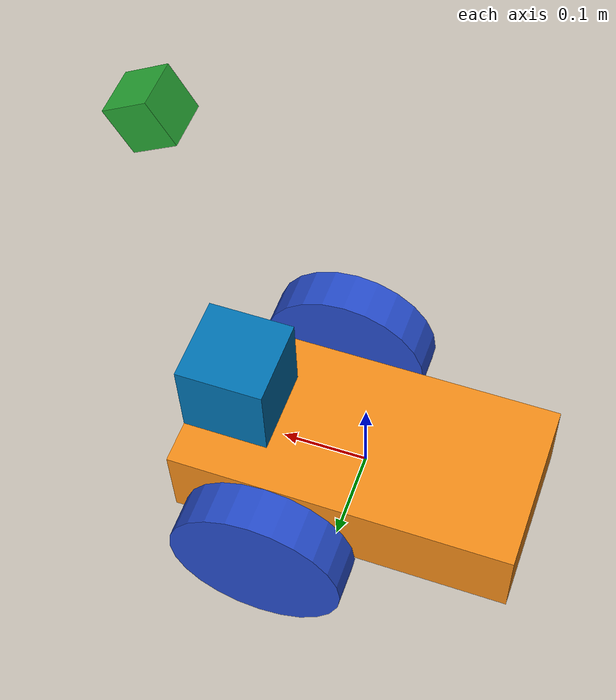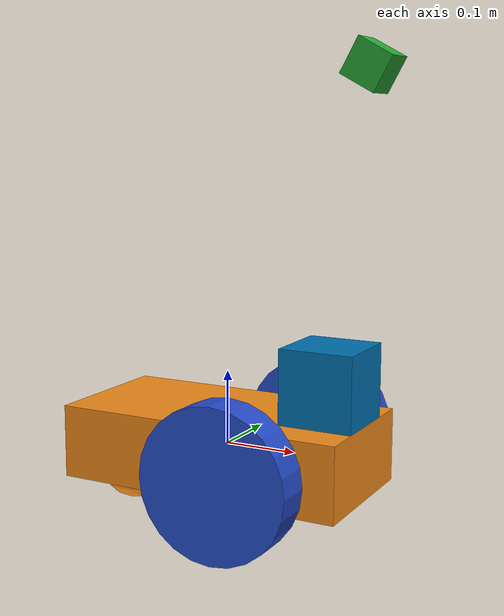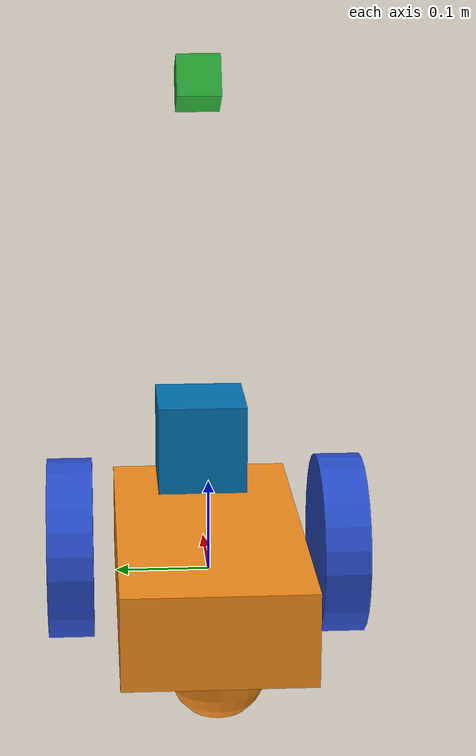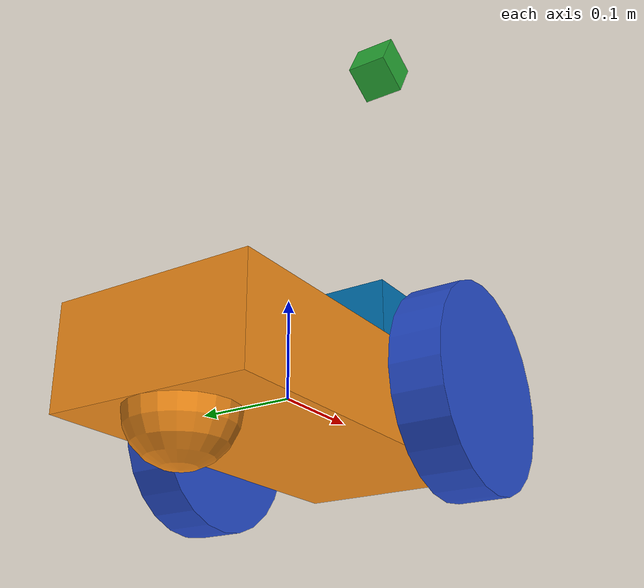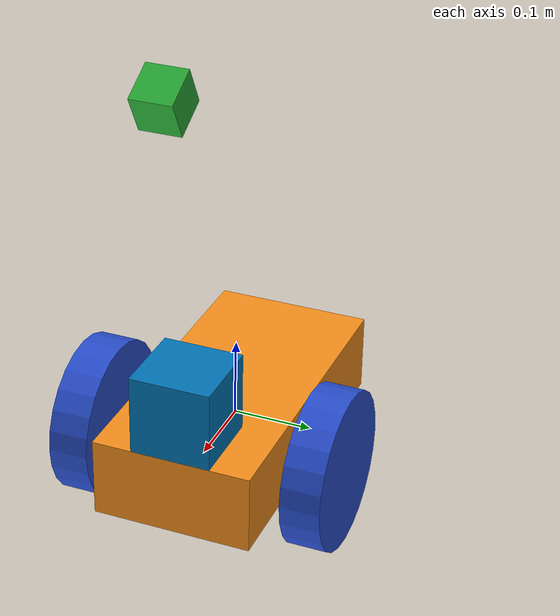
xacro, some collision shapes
<?xml version='1.0'?>
<robot name="pathfinder" xmlns:xacro="http://www.ros.org/wiki/xacro">
  <xacro:property name="cameraSize" value="0.05"/>
  <xacro:property name="cameraMass" value="0.1"/>

  <xacro:include filename="$(find pf_description)/urdf/pathfinder.gazebo" />
  <xacro:include filename="$(find pf_description)/urdf/materials.xacro" />

  <!-- LINKS -->

  <link name='chassis'>
    <pose>0 0 0.1 0 0 0</pose>
    <inertial>
      <mass value="15.0"/>
      <origin xyz="0.0 0 0.1" rpy=" 0 0 0"/>
      <inertia ixx="0.1" ixy="0" ixz="0" iyy="0.1" iyz="0" izz="0.1"/>
    </inertial>
    <collision name='collision'>
      <geometry>
        <box size=".4 .2 .1"/>
      </geometry>
    </collision>
    <visual name='chassis_visual'>
      <origin xyz="0 0 0" rpy=" 0 0 0"/>
      <geometry>
        <box size=".4 .2 .1"/>
      </geometry>
    </visual>
    <collision name='caster_collision'>
      <origin xyz="-0.15 0 -0.05" rpy=" 0 0 0"/>
      <geometry>
        <sphere radius="0.05"/>
      </geometry>
      <surface>
        <friction>
          <ode>
            <mu>0</mu>
            <mu2>0</mu2>
            <slip1>1.0</slip1>
            <slip2>1.0</slip2>
          </ode>
        </friction>
      </surface>
    </collision>
    <visual name='caster_visual'>
      <origin xyz="-0.15 0 -0.05" rpy=" 0 0 0"/>
      <geometry>
        <sphere radius="0.05"/>
      </geometry>
    </visual>
  </link>

  <link name="left_wheel">
    <collision name="collision">
      <origin xyz="0 0 0" rpy="0 1.5707 1.5707"/>
      <geometry>
        <cylinder radius="0.1" length="0.05"/>
      </geometry>
    </collision>
    <visual name="left_wheel_visual">
      <origin xyz="0 0 0" rpy="0 1.5707 1.5707"/>
      <geometry>
        <cylinder radius="0.1" length="0.05"/>
      </geometry>
    </visual>
    <inertial>
      <origin xyz="0 0 0" rpy="0 1.5707 1.5707"/>
      <mass value="5"/>
      <inertia ixx=".1" ixy="0.0" ixz="0.0" iyy=".1" iyz="0.0" izz=".1"/>
    </inertial>
  </link>

  <link name="right_wheel">
    <collision name="collision">
      <origin xyz="0 0 0" rpy="0 1.5707 1.5707"/>
      <geometry>
        <cylinder radius="0.1" length="0.05"/>
      </geometry>
    </collision>
    <visual name="right_wheel_visual">
      <origin xyz="0 0 0" rpy="0 1.5707 1.5707"/>
      <geometry>
        <cylinder radius="0.1" length="0.05"/>
      </geometry>
    </visual>
    <inertial>
      <origin xyz="0 0 0" rpy="0 1.5707 1.5707"/>
      <mass value="5"/>
      <inertia ixx=".1" ixy="0.0" ixz="0.0" iyy=".1" iyz="0.0" izz=".1"/>
    </inertial>
  </link>

  <link name="camera">
    <collision>
      <origin xyz="0 0 0" rpy="0 0 0"/>
      <geometry>
        <box size="${cameraSize} ${cameraSize} ${cameraSize}"/>
      </geometry>
    </collision>
    <visual>
      <origin xyz="0 0 0" rpy="0 0 0"/>
      <geometry>
        <box size="${cameraSize} ${cameraSize} ${cameraSize}"/>
      </geometry>
      <material name="green"/>
    </visual>
    <inertial>
      <mass value="${cameraMass}" />
      <origin xyz="0 0 0" rpy="0 0 0"/>
      <box_inertia m="${cameraMass}" x="${cameraSize}" y="${cameraSize}" z="${cameraSize}" />
      <inertia ixx="1e-6" ixy="0" ixz="0" iyy="1e-6" iyz="0" izz="1e-6" />
    </inertial>
  </link>

  <link name="hokuyo">
    <collision>
      <origin xyz="0 0 0" rpy="0 0 0"/>
      <geometry>
    <box size="0.1 0.1 0.1"/>
      </geometry>
    </collision>
    <visual>
      <origin xyz="0 0 0" rpy="0 0 0"/>
      <geometry>
        <mesh filename="package://pf_description/meshes/hokuyo.dae"/>
      </geometry>
    </visual>
    <inertial>
      <mass value="1e-5" />
      <origin xyz="0 0 0" rpy="0 0 0"/>
      <inertia ixx="1e-6" ixy="0" ixz="0" iyy="1e-6" iyz="0" izz="1e-6" />
    </inertial>
  </link>

  <!-- JOINTS -->

  <joint name="left_wheel_hinge" type="continuous">
    <axis xyz="0 1 0" rpy="0 0 0"/>
    <origin xyz=".07 0.15 0" rpy="0 0 0"/>
    <parent link="chassis"/>
    <child link="left_wheel"/>
    <limit effort="10000" velocity="1000"/>
    <joint_properties damping="1.0" friction="1.0"/>
  </joint>

  <joint name="right_wheel_hinge" type="continuous">
    <axis xyz="0 1 0" rpy="0 0 0"/>
    <origin xyz=".07 -0.15 0" rpy="0 0 0"/>
    <parent link="chassis"/>
    <child link="right_wheel"/>
    <limit effort="10000" velocity="1000"/>
    <joint_properties damping="1.0" friction="1.0"/>
  </joint>

  <joint name="camera_joint" type="fixed">
    <axis xyz="0 1 0" />
    <origin xyz=".2 0 0.5" rpy="0 0.5 0"/>
    <parent link="chassis"/>
    <child link="camera"/>
  </joint>

  <joint name="hokuyo_joint" type="fixed">
    <axis xyz="0 1 0" />
    <origin xyz=".15 0 .1" rpy="0 0 0"/>
    <parent link="chassis"/>
    <child link="hokuyo"/>
  </joint>
</robot>
